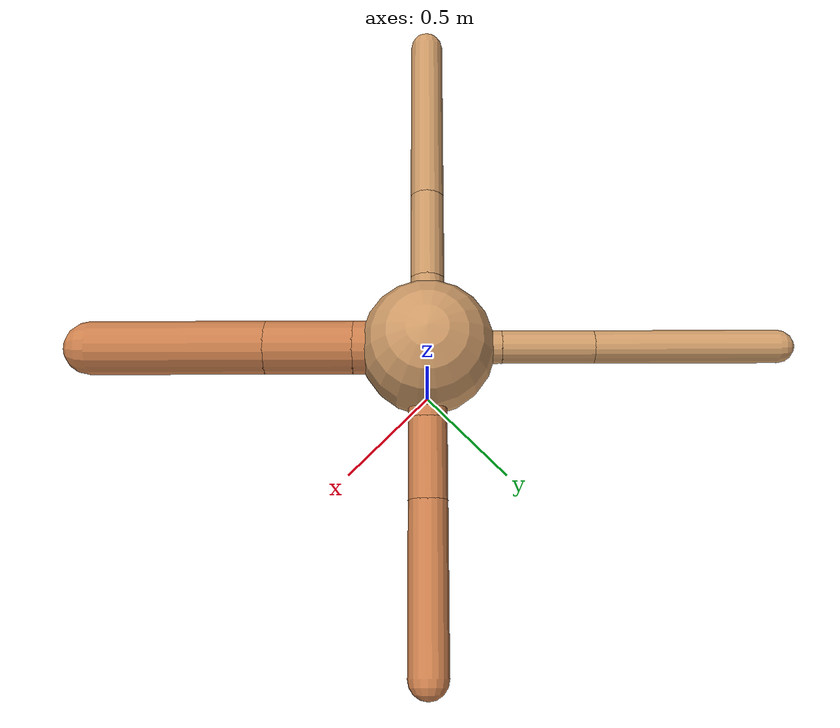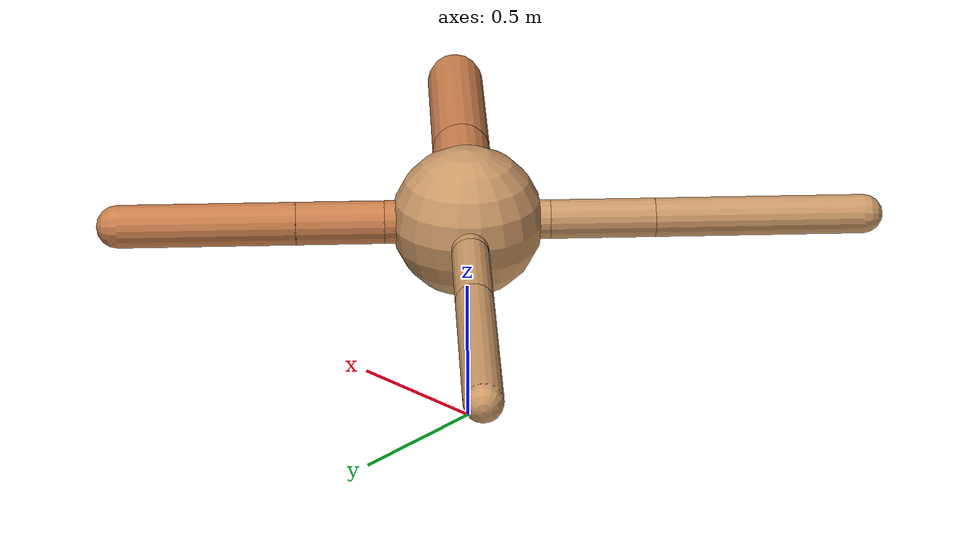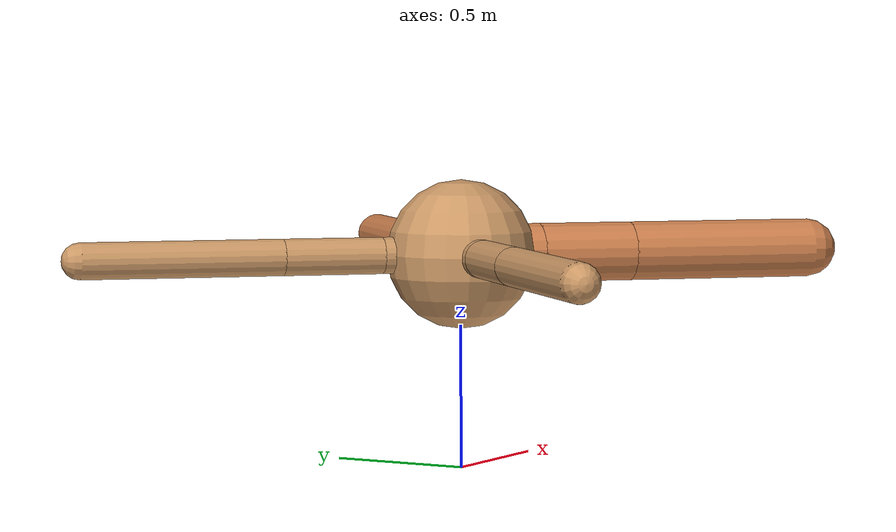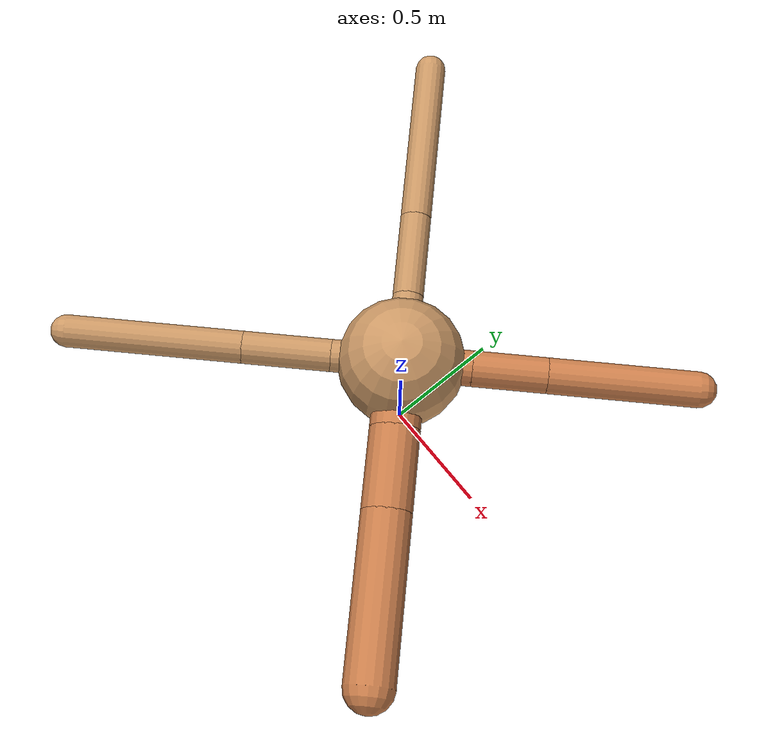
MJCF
<?xml version="1.0" ?>
<mujoco model="ant">

	<compiler angle="degree" coordinate="local" inertiafromgeom="true"/>

	<option integrator="RK4" timestep="0.01"/>

	<custom>

		<numeric data="0.0 0.0 0.55 1.0 0.0 0.0 0.0 0.0 1.0 0.0 -1.0 0.0 -1.0 0.0 1.0" name="init_qpos"/>

	</custom>

	<default>

		<joint armature="1" damping="1" limited="true"/>

		<geom conaffinity="0" condim="3" density="5.0" friction="1.5 0.1 0.1" margin="0.01" rgba="0.8 0.6 0.4 1"/>

	</default>

	<worldbody>

		<body name="torso" pos="0 0 0.75">

			<geom name="torso_geom" pos="0 0 0" size="0.2596911797478803" type="sphere"/>

			<!--joint armature="0" damping="0" limited="false" margin="0.01" name="root" pos="0 0 0" type="free"/-->

			<body name="front_left_leg" pos="0 0 0">

				<geom fromto="0 0 0 0.2 0.2 0" name="aux_1_geom" size="0.0734230212727026" type="capsule" rgba=".8 .5 .3 1"/>

				<body name="aux_1" pos="0.2 0.2 0">

					<joint axis="0 0 1" name="hip_1" pos="0.0 0.0 0.0" range="-40 40" type="hinge"/>

					<geom fromto="0 0 0 0.2135825043329067 0.2135825043329067 0" name="left_leg_geom" size="0.0734230212727026" type="capsule" rgba=".8 .5 .3 1"/>

					<body pos="0.2135825043329067 0.2135825043329067 0" name="front_left_foot">

						<joint axis="-1 1 0" name="ankle_1" pos="0.0 0.0 0.0" range="30 100" type="hinge"/>

						<geom fromto="0 0 0 0.4271650086658134 0.4271650086658134 0" name="left_ankle_geom" size="0.0734230212727026" type="capsule" rgba=".8 .5 .3 1"/>

					</body>

				</body>

			</body>

			<body name="front_right_leg" pos="0 0 0">

				<geom fromto="0 0 0 -0.2 0.2 0" name="aux_2_geom" size="0.06355275557937802" type="capsule"/>

				<body name="aux_2" pos="-0.2 0.2 0">

					<joint axis="0 0 1" name="hip_2" pos="0.0 0.0 0.0" range="-40 40" type="hinge"/>

					<geom fromto="0 0 0 -0.2481843105706951 0.2481843105706951 0" name="right_leg_geom" size="0.06355275557937802" type="capsule"/>

					<body pos="-0.2481843105706951 0.2481843105706951 0" name="front_right_foot">

						<joint axis="1 1 0" name="ankle_2" pos="0.0 0.0 0.0" range="-100 -30" type="hinge"/>

						<geom fromto="0 0 0 -0.4963686211413902 0.4963686211413902 0" name="right_ankle_geom" size="0.06355275557937802" type="capsule"/>

					</body>

				</body>

			</body>

			<body name="left_back_leg" pos="0 0 0">

				<geom fromto="0 0 0 -0.2 -0.2 0" name="aux_3_geom" size="0.06649460696019953" type="capsule"/>

				<body name="aux_3" pos="-0.2 -0.2 0">

					<joint axis="0 0 1" name="hip_3" pos="0.0 0.0 0.0" range="-40 40" type="hinge"/>

					<geom fromto="0 0 0 -0.25338415252367413 -0.25338415252367413 0" name="back_leg_geom" size="0.06649460696019953" type="capsule"/>

					<body pos="-0.25338415252367413 -0.25338415252367413 0" name="left_back_foot">

						<joint axis="-1 1 0" name="ankle_3" pos="0.0 0.0 0.0" range="-100 -30" type="hinge"/>

						<geom fromto="0 0 0 -0.5067683050473483 -0.5067683050473483 0" name="third_ankle_geom" size="0.06649460696019953" type="capsule"/>

					</body>

				</body>

			</body>

			<body name="right_back_leg" pos="0 0 0">

				<geom fromto="0 0 0 0.2 -0.2 0" name="aux_4_geom" size="0.10304309698999765" type="capsule" rgba=".8 .5 .3 1"/>

				<body name="aux_4" pos="0.2 -0.2 0">

					<joint axis="0 0 1" name="hip_4" pos="0.0 0.0 0.0" range="-40 40" type="hinge"/>

					<geom fromto="0 0 0 0.23645151784390334 -0.23645151784390334 0" name="rightback_leg_geom" size="0.10304309698999765" type="capsule" rgba=".8 .5 .3 1"/>

					<body pos="0.23645151784390334 -0.23645151784390334 0" name="right_back_foot">

						<joint axis="1 1 0" name="ankle_4" pos="0.0 0.0 0.0" range="30 100" type="hinge"/>

						<geom fromto="0 0 0 0.47290303568780667 -0.47290303568780667 0" name="fourth_ankle_geom" size="0.10304309698999765" type="capsule" rgba=".8 .5 .3 1"/>

					</body>

				</body>

			</body>

		</body>

	</worldbody>

	<actuator>

		<motor ctrllimited="true" ctrlrange="-1.0 1.0" joint="hip_4" gear="150"/>

		<motor ctrllimited="true" ctrlrange="-1.0 1.0" joint="ankle_4" gear="150"/>

		<motor ctrllimited="true" ctrlrange="-1.0 1.0" joint="hip_1" gear="150"/>

		<motor ctrllimited="true" ctrlrange="-1.0 1.0" joint="ankle_1" gear="150"/>

		<motor ctrllimited="true" ctrlrange="-1.0 1.0" joint="hip_2" gear="150"/>

		<motor ctrllimited="true" ctrlrange="-1.0 1.0" joint="ankle_2" gear="150"/>

		<motor ctrllimited="true" ctrlrange="-1.0 1.0" joint="hip_3" gear="150"/>

		<motor ctrllimited="true" ctrlrange="-1.0 1.0" joint="ankle_3" gear="150"/>

	</actuator>

</mujoco>
